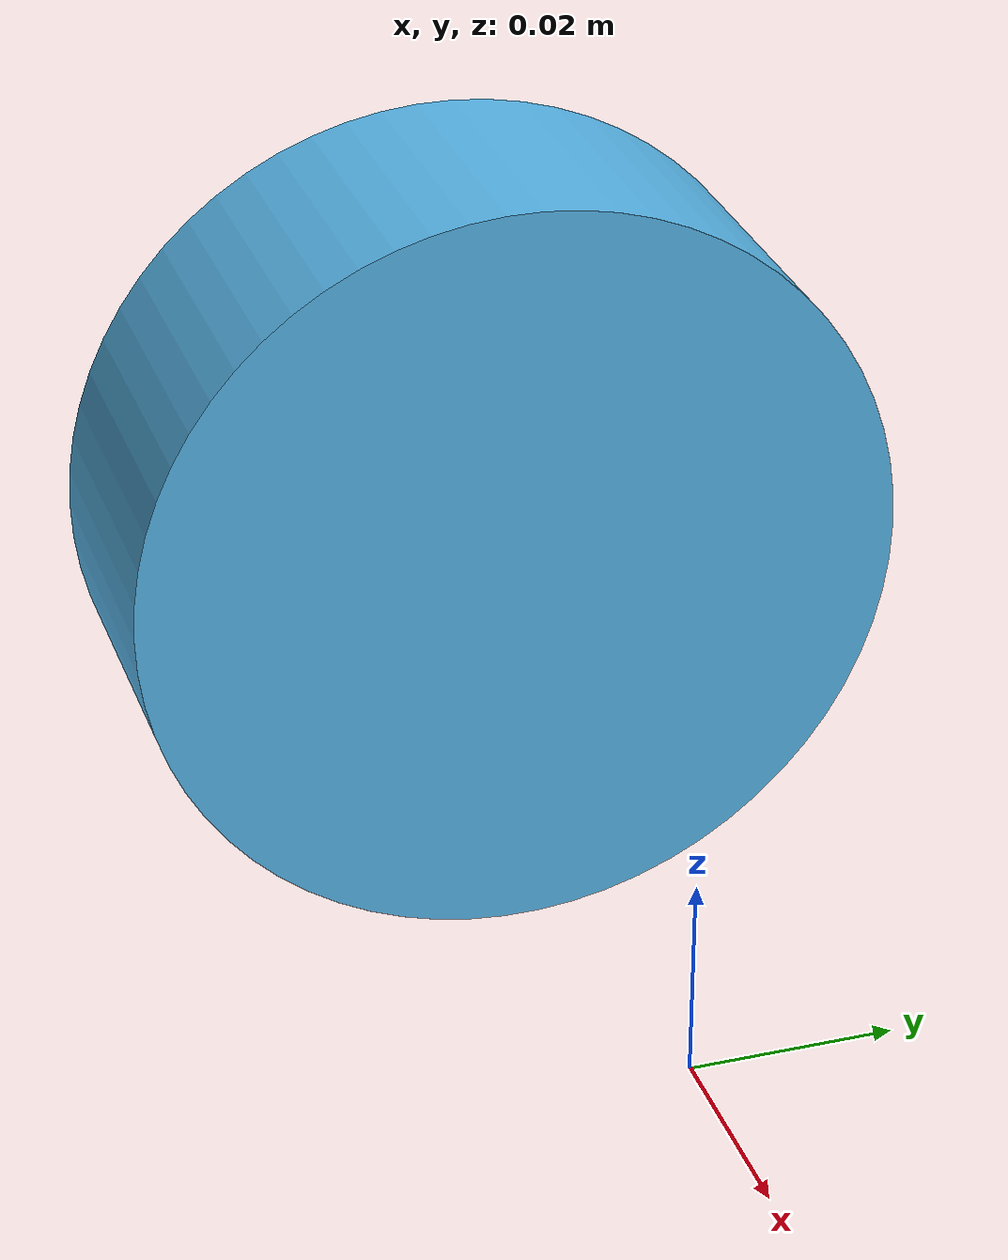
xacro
<?xml version="1.0" ?>
<robot name="Basic_Robot" xmlns:xacro="http://www.ros.org/wiki/xacro">

  <link name="base_link">
  </link>

  <joint name="base_chassis_joint" type="fixed">
    <parent link="base_link"/>
    <child link="chassis"/>
  </joint>

  <link name="chassis">
    <visual>
      <origin xyz="0 0 0" rpy="0 0 0"/>
      <geometry>
        <mesh filename="package://basic_robot/meshes/left_wheel_1.stl" scale="0.01 0.01 0.01"/>
      </geometry>
    </visual>
  </link>

</robot>
